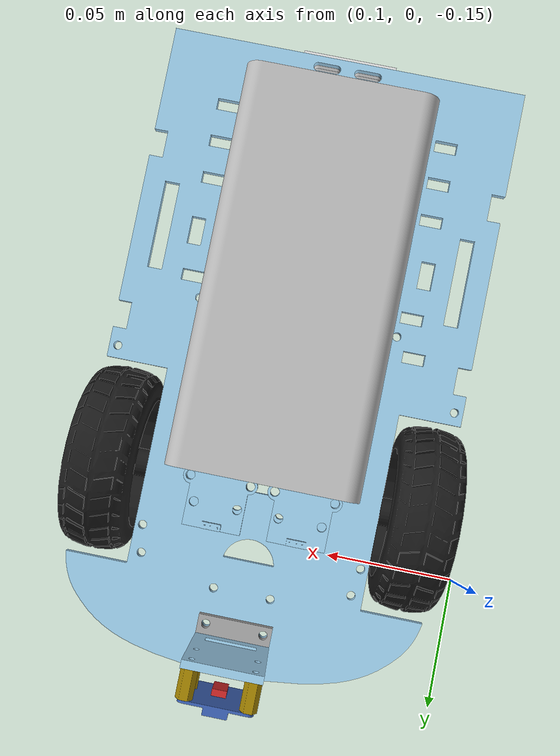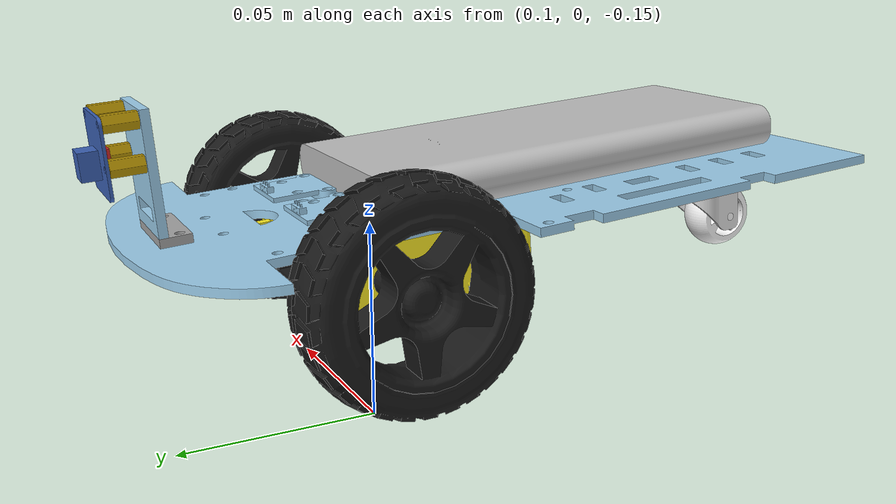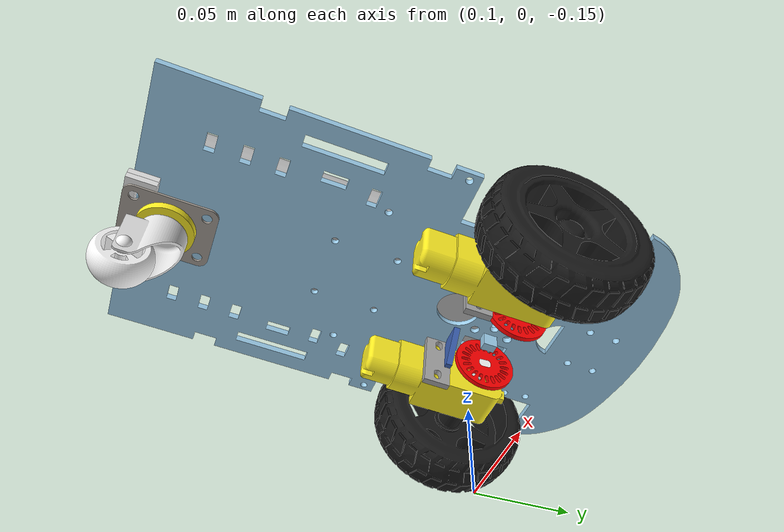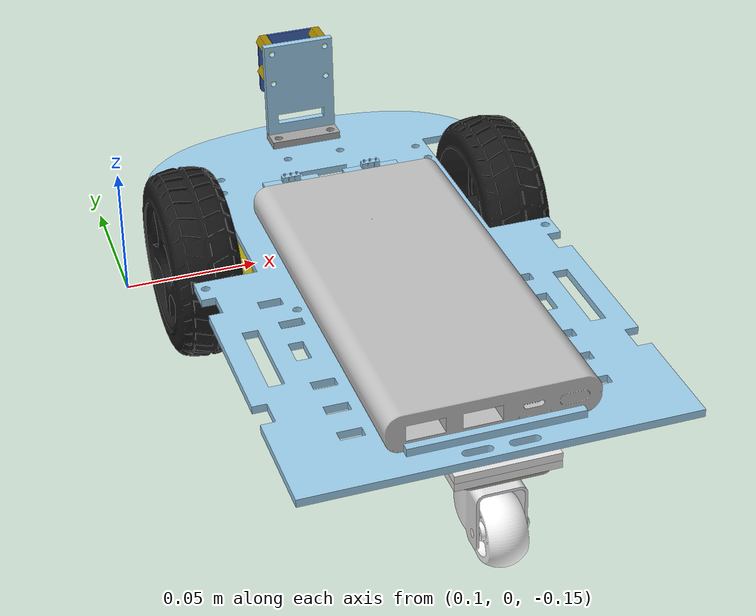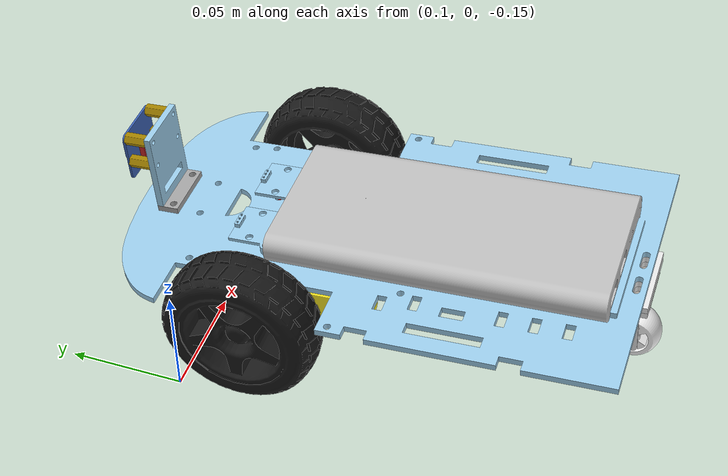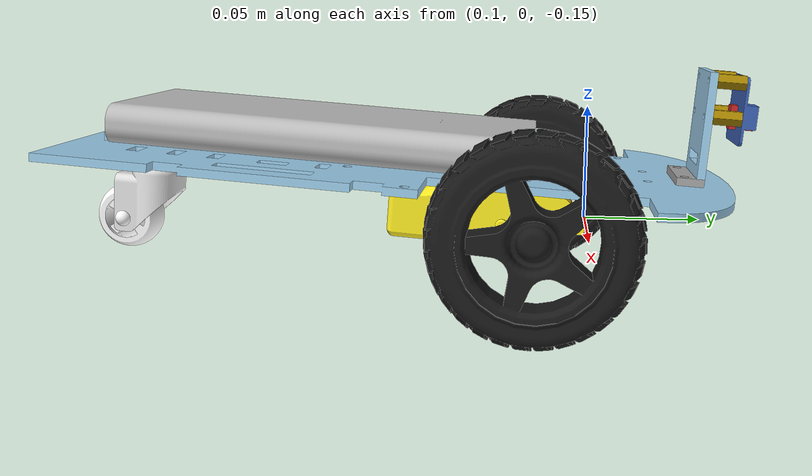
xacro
<?xml version='1.0'?>

<robot name="edubot_2wd" xmlns:xacro="http://www.ros.org/wiki/xacro">
    <xacro:include filename="$(find edubot_2wd)/urdf/edubot_2wd.gazebo"/>

<link name="base_assembly_1">
<inertial>
<origin xyz="0 0 0" rpy="0 0 0" />
<mass value="1e-9" />
<inertia ixx="0" ixy="0" ixz="0" iyy="0" iyz="0" izz="0" />
</inertial>
</link>
<link name="base_assembly_1_0_motor_support">
<visual>
<geometry>
<mesh filename="package://edubot_2wd/urdf/motor_support.stl"/>
</geometry>
<material name="base_assembly_1_0_motor_support_material">
<color rgba="0.647059 0.647059 0.647059 1.0"/>
</material>
</visual>
<collision>
<geometry>
<mesh filename="package://edubot_2wd/urdf/motor_support.stl"/>
</geometry>
<material name="base_assembly_1_0_motor_support_material">
<color rgba="0.647059 0.647059 0.647059 1.0"/>
</material>
</collision>
<inertial>
<origin xyz="0.120581 0.020618 0.0014" rpy="0 0 0"/>
<mass value="0.000867038"/>
<inertia ixx="1.00991e-08" ixy="9.39237e-10"  ixz="0" iyy="5.75721e-08" iyz="0" izz="6.65383e-08" />
</inertial>
</link>
<joint name="base_assembly_1_base_assembly_1_0_motor_support_fixing" type="fixed">
<origin xyz="0.158781 -0.0710889 -0.24573" rpy="-1.57079 -1.49607 1.57079" />
<parent link="base_assembly_1" />
<child link="base_assembly_1_0_motor_support" />
<axis xyz="0 0 0"/>
</joint>

<link name="base_assembly_1_1_motor_support_fix">
<visual>
<geometry>
<mesh filename="package://edubot_2wd/urdf/motor_support_fix.stl"/>
</geometry>
<material name="base_assembly_1_1_motor_support_fix_material">
<color rgba="0.231373 0.380392 0.705882 1.0"/>
</material>
</visual>
<collision>
<geometry>
<mesh filename="package://edubot_2wd/urdf/motor_support_fix.stl"/>
</geometry>
<material name="base_assembly_1_1_motor_support_fix_material">
<color rgba="0.231373 0.380392 0.705882 1.0"/>
</material>
</collision>
<inertial>
<origin xyz="0.114114 0.0643843 0.0014" rpy="0 0 0"/>
<mass value="0.000375957"/>
<inertia ixx="5.697e-09" ixy="2.13221e-09"  ixz="0" iyy="3.64143e-09" iyz="0" izz="8.84718e-09" />
</inertial>
</link>
<joint name="base_assembly_1_base_assembly_1_1_motor_support_fix_fixing" type="fixed">
<origin xyz="0.27572 -0.042665 -0.186442" rpy="1.64553 -1.29436e-07 3.14159" />
<parent link="base_assembly_1" />
<child link="base_assembly_1_1_motor_support_fix" />
<axis xyz="0 0 0"/>
</joint>

<link name="base_assembly_1_2_camera_chassis">
<visual>
<geometry>
<mesh filename="package://edubot_2wd/urdf/camera_chassis.stl"/>
</geometry>
<material name="base_assembly_1_2_camera_chassis_material">
<color rgba="0.615686 0.811765 0.929412 1.0"/>
</material>
</visual>
<collision>
<geometry>
<mesh filename="package://edubot_2wd/urdf/camera_chassis.stl"/>
</geometry>
<material name="base_assembly_1_2_camera_chassis_material">
<color rgba="0.615686 0.811765 0.929412 1.0"/>
</material>
</collision>
<inertial>
<origin xyz="5.87229e-19 -0.0014 0.030354" rpy="0 0 0"/>
<mass value="0.002993"/>
<inertia ixx="3.36266e-07" ixy="0"  ixz="0" iyy="5.21243e-07" iyz="0" izz="1.88888e-07" />
</inertial>
</link>
<joint name="base_assembly_1_base_assembly_1_2_camera_chassis_fixing" type="fixed">
<origin xyz="0.179606 0.0362425 -0.126733" rpy="-0.0747306 1.29436e-07 -9.69083e-09" />
<parent link="base_assembly_1" />
<child link="base_assembly_1_2_camera_chassis" />
<axis xyz="0 0 0"/>
</joint>

<link name="base_assembly_1_3_htsb-m3-10-5-1">
<visual>
<geometry>
<mesh filename="package://edubot_2wd/urdf/htsb-m3-10-5-1.stl"/>
</geometry>
<material name="base_assembly_1_3_htsb-m3-10-5-1_material">
<color rgba="0.647059 0.517647 0 1.0"/>
</material>
</visual>
<collision>
<geometry>
<mesh filename="package://edubot_2wd/urdf/htsb-m3-10-5-1.stl"/>
</geometry>
<material name="base_assembly_1_3_htsb-m3-10-5-1_material">
<color rgba="0.647059 0.517647 0 1.0"/>
</material>
</collision>
<inertial>
<origin xyz="-2.65892e-16 6.66116e-10 0.005" rpy="0 0 0"/>
<mass value="0.00129095"/>
<inertia ixx="1.34386e-08" ixy="0"  ixz="0" iyy="1.34386e-08" iyz="-3.44676e-15" izz="5.50858e-09" />
</inertial>
</link>
<joint name="base_assembly_1_base_assembly_1_3_htsb-m3-10-5-1_fixing" type="fixed">
<origin xyz="0.169106 0.0486553 -0.094881" rpy="1.49607 1.29436e-07 -9.69083e-09" />
<parent link="base_assembly_1" />
<child link="base_assembly_1_3_htsb-m3-10-5-1" />
<axis xyz="0 0 0"/>
</joint>

<link name="base_assembly_1_4_spacer">
<visual>
<geometry>
<mesh filename="package://edubot_2wd/urdf/spacer.stl"/>
</geometry>
<material name="base_assembly_1_4_spacer_material">
<color rgba="0.917647 0.917647 0.917647 1.0"/>
</material>
</visual>
<collision>
<geometry>
<mesh filename="package://edubot_2wd/urdf/spacer.stl"/>
</geometry>
<material name="base_assembly_1_4_spacer_material">
<color rgba="0.917647 0.917647 0.917647 1.0"/>
</material>
</collision>
<inertial>
<origin xyz="0.128001 -0.00982753 0.0014" rpy="0 0 0"/>
<mass value="0.00121635"/>
<inertia ixx="1.86821e-08" ixy="0"  ixz="0" iyy="1.32941e-07" iyz="0" izz="1.50034e-07" />
</inertial>
</link>
<joint name="base_assembly_1_base_assembly_1_4_spacer_fixing" type="fixed">
<origin xyz="0.0516034 -0.168639 -0.111671" rpy="-0.0747306 1.29436e-07 -9.69083e-09" />
<parent link="base_assembly_1" />
<child link="base_assembly_1_4_spacer" />
<axis xyz="0 0 0"/>
</joint>

<link name="base_assembly_1_5_encoder">
<visual>
<geometry>
<mesh filename="package://edubot_2wd/urdf/encoder.stl"/>
</geometry>
<material name="base_assembly_1_5_encoder_material">
<color rgba="0.615686 0.811765 0.929412 1.0"/>
</material>
</visual>
<collision>
<geometry>
<mesh filename="package://edubot_2wd/urdf/encoder.stl"/>
</geometry>
<material name="base_assembly_1_5_encoder_material">
<color rgba="0.615686 0.811765 0.929412 1.0"/>
</material>
</collision>
<inertial>
<origin xyz="0.0168709 7.9004e-08 0.00178212" rpy="0 0 0"/>
<mass value="0.00147569"/>
<inertia ixx="7.31045e-08" ixy="1.4847e-12"  ixz="-1.54112e-08" iyy="7.29552e-08" iyz="5.02921e-13" izz="1.08571e-07" />
</inertial>
</link>
<joint name="base_assembly_1_base_assembly_1_5_encoder_fixing" type="fixed">
<origin xyz="0.16404 1.74183e-05 -0.11387" rpy="3.14159 -0.0747306 -1.5708" />
<parent link="base_assembly_1" />
<child link="base_assembly_1_5_encoder" />
<axis xyz="0 0 0"/>
</joint>

<link name="base_assembly_1_6_htsb-m3-10-5-1">
<visual>
<geometry>
<mesh filename="package://edubot_2wd/urdf/htsb-m3-10-5-1.stl"/>
</geometry>
<material name="base_assembly_1_6_htsb-m3-10-5-1_material">
<color rgba="0.647059 0.517647 0 1.0"/>
</material>
</visual>
<collision>
<geometry>
<mesh filename="package://edubot_2wd/urdf/htsb-m3-10-5-1.stl"/>
</geometry>
<material name="base_assembly_1_6_htsb-m3-10-5-1_material">
<color rgba="0.647059 0.517647 0 1.0"/>
</material>
</collision>
<inertial>
<origin xyz="-2.65892e-16 6.66116e-10 0.005" rpy="0 0 0"/>
<mass value="0.00129095"/>
<inertia ixx="1.34386e-08" ixy="0"  ixz="0" iyy="1.34386e-08" iyz="-3.44676e-15" izz="5.50858e-09" />
</inertial>
</link>
<joint name="base_assembly_1_base_assembly_1_6_htsb-m3-10-5-1_fixing" type="fixed">
<origin xyz="0.169106 0.0495886 -0.0824159" rpy="1.49607 1.29436e-07 -9.69083e-09" />
<parent link="base_assembly_1" />
<child link="base_assembly_1_6_htsb-m3-10-5-1" />
<axis xyz="0 0 0"/>
</joint>

<link name="base_assembly_1_7_base_chassis">
<visual>
<geometry>
<mesh filename="package://edubot_2wd/urdf/base_chassis.stl"/>
</geometry>
<material name="base_assembly_1_7_base_chassis_material">
<color rgba="0.615686 0.811765 0.929412 1.0"/>
</material>
</visual>
<collision>
<geometry>
<mesh filename="package://edubot_2wd/urdf/base_chassis.stl"/>
</geometry>
<material name="base_assembly_1_7_base_chassis_material">
<color rgba="0.615686 0.811765 0.929412 1.0"/>
</material>
</collision>
<inertial>
<origin xyz="6.67892e-05 -0.0115804 0.00141898" rpy="0 0 0"/>
<mass value="0.0793419"/>
<inertia ixx="0.000355218" ixy="3.16188e-08"  ixz="-7.7479e-10" iyy="9.42324e-05" iyz="1.4262e-07" izz="0.000449339" />
</inertial>
</link>
<joint name="base_assembly_1_base_assembly_1_7_base_chassis_fixing" type="fixed">
<origin xyz="0.179604 -0.0662991 -0.113718" rpy="-0.0747306 1.29436e-07 -9.69083e-09" />
<parent link="base_assembly_1" />
<child link="base_assembly_1_7_base_chassis" />
<axis xyz="0 0 0"/>
</joint>
// for edubot_2wd
<link name="base_assembly_1_8_camera">
<visual>
<geometry>
<mesh filename="package://edubot_2wd/urdf/camera.stl"/>
</geometry>
<material name="base_assembly_1_8_camera_material">
<color rgba="0.231373 0.380392 0.705882 1.0"/>
</material>
</visual>
<collision>
<geometry>
<mesh filename="package://edubot_2wd/urdf/camera.stl"/>
</geometry>
<material name="base_assembly_1_8_camera_material">
<color rgba="0.231373 0.380392 0.705882 1.0"/>
</material>
</collision>
<inertial>
<origin xyz="0.039471 -0.000916067 0.043527" rpy="0 0 0"/>
<mass value="0.00104599"/>
<inertia ixx="3.6693e-08" ixy="0"  ixz="0" iyy="6.55484e-08" iyz="-2.04222e-09" izz="3.72038e-08" />
</inertial>
</link>
<joint name="base_assembly_1_base_assembly_1_8_camera_fixing" type="fixed">
<origin xyz="0.219077 0.0465131 -0.136887" rpy="0.0747306 -1.29436e-07 3.14159" />
<parent link="base_assembly_1" />
<child link="base_assembly_1_8_camera" />
<axis xyz="0 0 0"/>
</joint>

<!-- Camera Interface -->
<link name="camera">
    <inertial>
        <mass value="0.1"/>
        <origin xyz="0.0 0 0" rpy=" 0 0 0"/>
        <inertia
            ixx="1e-6" ixy="0" ixz="0"
            iyy="1e-6" iyz="0"
            izz="1e-6"
        />
    </inertial>

    <collision name="camera_collision">
        <origin xyz="0.0 0 0" rpy=" 0 0 0"/>
        <geometry>
            <box size="0.0085 0.0025 0.0085"/>
        </geometry>
    </collision>

    <visual name="camera_visual">
        <origin xyz="0.0 0 0" rpy=" 0 0 0"/>
        <geometry>
            <box size="0.0085 0.0050 0.0085"/>
        </geometry>
    </visual>
</link>

<joint name="camera_joint" type="fixed">
    <origin xyz="0.039471 -0.000916067 0.04176" rpy="0 0 -1.57"/>
    <child link="camera"/>
    <parent link="base_assembly_1_8_camera"/>
    <axis xyz="0 1 0" rpy="0 0 0"/>
</joint>

<link name="base_assembly_1_9_bomotor">
<visual>
<geometry>
<mesh filename="package://edubot_2wd/urdf/bomotor.stl"/>
</geometry>
<material name="base_assembly_1_9_bomotor_material">
<color rgba="1 0.937255 0.137255 1.0"/>
</material>
</visual>
<collision>
<geometry>
<mesh filename="package://edubot_2wd/urdf/bomotor.stl"/>
</geometry>
<material name="base_assembly_1_9_bomotor_material">
<color rgba="1 0.937255 0.137255 1.0"/>
</material>
</collision>
<inertial>
<origin xyz="-0.000220082 -0.0279981 7.35227e-11" rpy="0 0 0"/>
<mass value="0.0223517"/>
<inertia ixx="7.11163e-06" ixy="-1.03276e-07"  ixz="2.81331e-13" iyy="1.39901e-06" iyz="6.1673e-14" izz="6.87826e-06" />
</inertial>
</link>
<joint name="base_assembly_1_base_assembly_1_9_bomotor_fixing" type="fixed">
<origin xyz="0.146631 -0.00983296 -0.128976" rpy="-3.06686 -1.29436e-07 3.14159" />
<parent link="base_assembly_1" />
<child link="base_assembly_1_9_bomotor" />
<axis xyz="0 0 0"/>
</joint>

<link name="base_assembly_1_10_part4assem2">
<visual>
<geometry>
<mesh filename="package://edubot_2wd/urdf/part4assem2.stl"/>
</geometry>
<material name="base_assembly_1_10_part4assem2_material">
<color rgba="1 0.937255 0.137255 1.0"/>
</material>
</visual>
<collision>
<geometry>
<mesh filename="package://edubot_2wd/urdf/part4assem2.stl"/>
</geometry>
<material name="base_assembly_1_10_part4assem2_material">
<color rgba="1 0.937255 0.137255 1.0"/>
</material>
</collision>
<inertial>
<origin xyz="-0.0428083 -0.0015 -0.0128044" rpy="0 0 0"/>
<mass value="0.00984795"/>
<inertia ixx="3.8407e-07" ixy="0"  ixz="0" iyy="7.53368e-07" iyz="0" izz="3.8407e-07" />
</inertial>
</link>
<joint name="base_assembly_1_base_assembly_1_10_part4assem2_fixing" type="fixed">
<origin xyz="0.136796 -0.178678 -0.114931" rpy="-1.49607 -1.29436e-07 3.14159" />
<parent link="base_assembly_1" />
<child link="base_assembly_1_10_part4assem2" />
<axis xyz="0 0 0"/>
</joint>

<link name="base_assembly_1_11_camera_support">
<visual>
<geometry>
<mesh filename="package://edubot_2wd/urdf/camera_support.stl"/>
</geometry>
<material name="base_assembly_1_11_camera_support_material">
<color rgba="0.647059 0.647059 0.647059 1.0"/>
</material>
</visual>
<collision>
<geometry>
<mesh filename="package://edubot_2wd/urdf/camera_support.stl"/>
</geometry>
<material name="base_assembly_1_11_camera_support_material">
<color rgba="0.647059 0.647059 0.647059 1.0"/>
</material>
</collision>
<inertial>
<origin xyz="0.0377144 -0.0014 0.0159868" rpy="0 0 0"/>
<mass value="0.000793831"/>
<inertia ixx="6.82045e-09" ixy="0"  ixz="0" iyy="5.19726e-08" iyz="0" izz="4.61894e-08" />
</inertial>
</link>
<joint name="base_assembly_1_base_assembly_1_11_camera_support_fixing" type="fixed">
<origin xyz="0.141892 0.0162274 -0.117089" rpy="-1.64553 1.29436e-07 -9.69083e-09" />
<parent link="base_assembly_1" />
<child link="base_assembly_1_11_camera_support" />
<axis xyz="0 0 0"/>
</joint>

<link name="base_assembly_1_12_spacer">
<visual>
<geometry>
<mesh filename="package://edubot_2wd/urdf/spacer.stl"/>
</geometry>
<material name="base_assembly_1_12_spacer_material">
<color rgba="0.917647 0.917647 0.917647 1.0"/>
</material>
</visual>
<collision>
<geometry>
<mesh filename="package://edubot_2wd/urdf/spacer.stl"/>
</geometry>
<material name="base_assembly_1_12_spacer_material">
<color rgba="0.917647 0.917647 0.917647 1.0"/>
</material>
</collision>
<inertial>
<origin xyz="0.128001 -0.00982753 0.0014" rpy="0 0 0"/>
<mass value="0.00121635"/>
<inertia ixx="1.86821e-08" ixy="0"  ixz="0" iyy="1.32941e-07" iyz="0" izz="1.50034e-07" />
</inertial>
</link>
<joint name="base_assembly_1_base_assembly_1_12_spacer_fixing" type="fixed">
<origin xyz="0.0516034 -0.16843 -0.108879" rpy="-0.0747306 1.29436e-07 -9.69083e-09" />
<parent link="base_assembly_1" />
<child link="base_assembly_1_12_spacer" />
<axis xyz="0 0 0"/>
</joint>

<link name="base_assembly_1_13_htsb-m3-10-5-1">
<visual>
<geometry>
<mesh filename="package://edubot_2wd/urdf/htsb-m3-10-5-1.stl"/>
</geometry>
<material name="base_assembly_1_13_htsb-m3-10-5-1_material">
<color rgba="0.647059 0.517647 0 1.0"/>
</material>
</visual>
<collision>
<geometry>
<mesh filename="package://edubot_2wd/urdf/htsb-m3-10-5-1.stl"/>
</geometry>
<material name="base_assembly_1_13_htsb-m3-10-5-1_material">
<color rgba="0.647059 0.517647 0 1.0"/>
</material>
</collision>
<inertial>
<origin xyz="-2.65892e-16 6.66116e-10 0.005" rpy="0 0 0"/>
<mass value="0.00129095"/>
<inertia ixx="1.34386e-08" ixy="0"  ixz="0" iyy="1.34386e-08" iyz="-3.44676e-15" izz="5.50858e-09" />
</inertial>
</link>
<joint name="base_assembly_1_base_assembly_1_13_htsb-m3-10-5-1_fixing" type="fixed">
<origin xyz="0.190106 0.0486553 -0.094881" rpy="1.49607 1.29436e-07 -9.69083e-09" />
<parent link="base_assembly_1" />
<child link="base_assembly_1_13_htsb-m3-10-5-1" />
<axis xyz="0 0 0"/>
</joint>

<link name="base_assembly_1_14_htsb-m3-10-5-1">
<visual>
<geometry>
<mesh filename="package://edubot_2wd/urdf/htsb-m3-10-5-1.stl"/>
</geometry>
<material name="base_assembly_1_14_htsb-m3-10-5-1_material">
<color rgba="0.647059 0.517647 0 1.0"/>
</material>
</visual>
<collision>
<geometry>
<mesh filename="package://edubot_2wd/urdf/htsb-m3-10-5-1.stl"/>
</geometry>
<material name="base_assembly_1_14_htsb-m3-10-5-1_material">
<color rgba="0.647059 0.517647 0 1.0"/>
</material>
</collision>
<inertial>
<origin xyz="-2.65892e-16 6.66116e-10 0.005" rpy="0 0 0"/>
<mass value="0.00129095"/>
<inertia ixx="1.34386e-08" ixy="0"  ixz="0" iyy="1.34386e-08" iyz="-3.44676e-15" izz="5.50858e-09" />
</inertial>
</link>
<joint name="base_assembly_1_base_assembly_1_14_htsb-m3-10-5-1_fixing" type="fixed">
<origin xyz="0.190106 0.0495886 -0.0824159" rpy="1.49607 1.29436e-07 -9.69083e-09" />
<parent link="base_assembly_1" />
<child link="base_assembly_1_14_htsb-m3-10-5-1" />
<axis xyz="0 0 0"/>
</joint>

<link name="base_assembly_1_15_motor_support">
<visual>
<geometry>
<mesh filename="package://edubot_2wd/urdf/motor_support.stl"/>
</geometry>
<material name="base_assembly_1_15_motor_support_material">
<color rgba="0.647059 0.647059 0.647059 1.0"/>
</material>
</visual>
<collision>
<geometry>
<mesh filename="package://edubot_2wd/urdf/motor_support.stl"/>
</geometry>
<material name="base_assembly_1_15_motor_support_material">
<color rgba="0.647059 0.647059 0.647059 1.0"/>
</material>
</collision>
<inertial>
<origin xyz="0.120581 0.020618 0.0014" rpy="0 0 0"/>
<mass value="0.000867038"/>
<inertia ixx="1.00991e-08" ixy="9.39237e-10"  ixz="0" iyy="5.75721e-08" iyz="0" izz="6.65383e-08" />
</inertial>
</link>
<joint name="base_assembly_1_base_assembly_1_15_motor_support_fixing" type="fixed">
<origin xyz="0.203228 -0.0710889 -0.24573" rpy="-1.57079 -1.49607 1.57079" />
<parent link="base_assembly_1" />
<child link="base_assembly_1_15_motor_support" />
<axis xyz="0 0 0"/>
</joint>

<link name="base_assembly_1_16_motor_support_fix">
<visual>
<geometry>
<mesh filename="package://edubot_2wd/urdf/motor_support_fix.stl"/>
</geometry>
<material name="base_assembly_1_16_motor_support_fix_material">
<color rgba="0.231373 0.380392 0.705882 1.0"/>
</material>
</visual>
<collision>
<geometry>
<mesh filename="package://edubot_2wd/urdf/motor_support_fix.stl"/>
</geometry>
<material name="base_assembly_1_16_motor_support_fix_material">
<color rgba="0.231373 0.380392 0.705882 1.0"/>
</material>
</collision>
<inertial>
<origin xyz="0.114114 0.0643843 0.0014" rpy="0 0 0"/>
<mass value="0.000375957"/>
<inertia ixx="5.697e-09" ixy="2.13221e-09"  ixz="0" iyy="3.64143e-09" iyz="0" izz="8.84718e-09" />
</inertial>
</link>
<joint name="base_assembly_1_base_assembly_1_16_motor_support_fix_fixing" type="fixed">
<origin xyz="0.0834887 -0.0398728 -0.186651" rpy="1.49607 1.29436e-07 -9.69083e-09" />
<parent link="base_assembly_1" />
<child link="base_assembly_1_16_motor_support_fix" />
<axis xyz="0 0 0"/>
</joint>

<link name="base_assembly_1_17_01_base_plate">
<visual>
<geometry>
<mesh filename="package://edubot_2wd/urdf/01_base_plate.stl"/>
</geometry>
<material name="base_assembly_1_17_01_base_plate_material">
<color rgba="0.647059 0.619608 0.588235 1.0"/>
</material>
</visual>
<collision>
<geometry>
<mesh filename="package://edubot_2wd/urdf/01_base_plate.stl"/>
</geometry>
<material name="base_assembly_1_17_01_base_plate_material">
<color rgba="0.647059 0.619608 0.588235 1.0"/>
</material>
</collision>
<inertial>
<origin xyz="-1.05806e-18 3.0561e-19 -0.0005" rpy="0 0 0"/>
<mass value="0.00810156"/>
<inertia ixx="9.43775e-07" ixy="0"  ixz="0" iyy="5.98899e-07" iyz="0" izz="1.54132e-06" />
</inertial>
</link>
<joint name="base_assembly_1_base_assembly_1_17_01_base_plate_fixing" type="fixed">
<origin xyz="0.179604 -0.165611 -0.111898" rpy="-0.0747306 1.29436e-07 -9.69083e-09" />
<parent link="base_assembly_1" />
<child link="base_assembly_1_17_01_base_plate" />
<axis xyz="0 0 0"/>
</joint>

<link name="base_assembly_1_18_bomotor">
<visual>
<geometry>
<mesh filename="package://edubot_2wd/urdf/bomotor.stl"/>
</geometry>
<material name="base_assembly_1_18_bomotor_material">
<color rgba="1 0.937255 0.137255 1.0"/>
</material>
</visual>
<collision>
<geometry>
<mesh filename="package://edubot_2wd/urdf/bomotor.stl"/>
</geometry>
<material name="base_assembly_1_18_bomotor_material">
<color rgba="1 0.937255 0.137255 1.0"/>
</material>
</collision>
<inertial>
<origin xyz="-0.000220082 -0.0279981 7.35227e-11" rpy="0 0 0"/>
<mass value="0.0223517"/>
<inertia ixx="7.11163e-06" ixy="-1.03276e-07"  ixz="2.81331e-13" iyy="1.39901e-06" iyz="6.1673e-14" izz="6.87826e-06" />
</inertial>
</link>
<joint name="base_assembly_1_base_assembly_1_18_bomotor_fixing" type="fixed">
<origin xyz="0.212578 -0.00983296 -0.128976" rpy="-0.0747306 1.29436e-07 -9.69083e-09" />
<parent link="base_assembly_1" />
<child link="base_assembly_1_18_bomotor" />
<axis xyz="0 0 0"/>
</joint>

<link name="base_assembly_1_19_encoder">
<visual>
<geometry>
<mesh filename="package://edubot_2wd/urdf/encoder.stl"/>
</geometry>
<material name="base_assembly_1_19_encoder_material">
<color rgba="0.615686 0.811765 0.929412 1.0"/>
</material>
</visual>
<collision>
<geometry>
<mesh filename="package://edubot_2wd/urdf/encoder.stl"/>
</geometry>
<material name="base_assembly_1_19_encoder_material">
<color rgba="0.615686 0.811765 0.929412 1.0"/>
</material>
</collision>
<inertial>
<origin xyz="0.0168709 7.9004e-08 0.00178212" rpy="0 0 0"/>
<mass value="0.00147569"/>
<inertia ixx="7.31045e-08" ixy="1.4847e-12"  ixz="-1.54112e-08" iyy="7.29552e-08" iyz="5.02921e-13" izz="1.08571e-07" />
</inertial>
</link>
<joint name="base_assembly_1_base_assembly_1_19_encoder_fixing" type="fixed">
<origin xyz="0.195168 1.7418e-05 -0.11387" rpy="3.14159 -0.0747306 -1.5708" />
<parent link="base_assembly_1" />
<child link="base_assembly_1_19_encoder" />
<axis xyz="0 0 0"/>
</joint>

<link name="base_assembly_1_20_mipowerbankbody">
<visual>
<geometry>
<mesh filename="package://edubot_2wd/urdf/mipowerbankbody.stl"/>
</geometry>
<material name="base_assembly_1_20_mipowerbankbody_material">
<color rgba="0.752941 0.752941 0.752941 1.0"/>
</material>
</visual>
<collision>
<geometry>
<mesh filename="package://edubot_2wd/urdf/mipowerbankbody.stl"/>
</geometry>
<material name="base_assembly_1_20_mipowerbankbody_material">
<color rgba="0.752941 0.752941 0.752941 1.0"/>
</material>
</collision>
<inertial>
<origin xyz="0.000147357 -4.61541e-07 -0.00690116" rpy="0 0 0"/>
<mass value="0.379828"/>
<inertia ixx="0.000684854" ixy="2.31547e-09"  ixz="-3.85005e-06" iyy="0.000829888" iyz="1.31742e-08" izz="0.000157161" />
</inertial>
</link>
<joint name="base_assembly_1_base_assembly_1_20_mipowerbankbody_fixing" type="fixed">
<origin xyz="0.180187 -0.102362 -0.101692" rpy="1.49607 1.29436e-07 -9.69083e-09" />
<parent link="base_assembly_1" />
<child link="base_assembly_1_20_mipowerbankbody" />
<axis xyz="0 0 0"/>
</joint>

<link name="wheel-encoder_assembly_1">
<inertial>
<origin xyz="0 0 0" rpy="0 0 0" />
<mass value="1e-9" />
<inertia ixx="0" ixy="0" ixz="0" iyy="0" iyz="0" izz="0" />
</inertial>
</link>
<link name="wheel-encoder_assembly_1_0_encwheel">
<visual>
<geometry>
<mesh filename="package://edubot_2wd/urdf/encwheel.stl"/>
</geometry>
<material name="wheel-encoder_assembly_1_0_encwheel_material">
<color rgba="1 0 0 1.0"/>
</material>
</visual>
<collision>
<geometry>
<mesh filename="package://edubot_2wd/urdf/encwheel.stl"/>
</geometry>
<material name="wheel-encoder_assembly_1_0_encwheel_material">
<color rgba="1 0 0 1.0"/>
</material>
</collision>
<inertial>
<origin xyz="-8.9546e-19 -0.001 1.73363e-18" rpy="0 0 0"/>
<mass value="0.000904879"/>
<inertia ixx="4.28296e-08" ixy="0"  ixz="0" iyy="8.50959e-08" iyz="0" izz="4.28695e-08" />
</inertial>
</link>
<joint name="wheel-encoder_assembly_1_wheel-encoder_assembly_1_0_encwheel_fixing" type="fixed">
<origin xyz="0.0157 6.93889e-18 0" rpy="-1.5708 1.5708 0" />
<parent link="wheel-encoder_assembly_1" />
<child link="wheel-encoder_assembly_1_0_encwheel" />
<axis xyz="0 0 0"/>
</joint>

<link name="wheel-encoder_assembly_1_1_bowheel">
<visual>
<geometry>
<mesh filename="package://edubot_2wd/urdf/bowheel.stl"/>
</geometry>
<material name="wheel-encoder_assembly_1_1_bowheel_material">
<color rgba="0.101961 0.101961 0.101961 1.0"/>
</material>
</visual>
<collision>
<geometry>
<mesh filename="package://edubot_2wd/urdf/bowheel.stl"/>
</geometry>
<material name="wheel-encoder_assembly_1_1_bowheel_material">
<color rgba="0.101961 0.101961 0.101961 1.0"/>
</material>
</collision>
<inertial>
<origin xyz="-0.00113129 1.93084e-17 -1.7794e-17" rpy="0 0 0"/>
<mass value="0.076202"/>
<inertia ixx="5.46071e-05" ixy="0"  ixz="0" iyy="3.04745e-05" iyz="0" izz="3.04738e-05" />
</inertial>
</link>
<joint name="wheel-encoder_assembly_1_wheel-encoder_assembly_1_1_bowheel_fixing" type="fixed">
<origin xyz="-0.02535 0 2.77556e-17" rpy="0 1.83697e-16 -6.61744e-24" />
<parent link="wheel-encoder_assembly_1" />
<child link="wheel-encoder_assembly_1_1_bowheel" />
<axis xyz="0 0 0"/>
</joint>

<link name="wheel-encoder_assembly_1_2_bomoshaft">
<visual>
<geometry>
<mesh filename="package://edubot_2wd/urdf/bomoshaft.stl"/>
</geometry>
<material name="wheel-encoder_assembly_1_2_bomoshaft_material">
<color rgba="1 1 1 1.0"/>
</material>
</visual>
<collision>
<geometry>
<mesh filename="package://edubot_2wd/urdf/bomoshaft.stl"/>
</geometry>
<material name="wheel-encoder_assembly_1_2_bomoshaft_material">
<color rgba="1 1 1 1.0"/>
</material>
</collision>
<inertial>
<origin xyz="0.0178038 -4.19817e-21 8.39633e-21" rpy="0 0 0"/>
<mass value="0.000809686"/>
<inertia ixx="2.89511e-09" ixy="0"  ixz="0" iyy="7.95812e-08" iyz="0" izz="7.99142e-08" />
</inertial>
</link>
<joint name="wheel-encoder_assembly_1_wheel-encoder_assembly_1_2_bomoshaft_fixing" type="fixed">
<origin xyz="-0.0177 6.93889e-18 0" rpy="0 -0 -6.61744e-24" />
<parent link="wheel-encoder_assembly_1" />
<child link="wheel-encoder_assembly_1_2_bomoshaft" />
<axis xyz="0 0 0"/>
</joint>

<joint name="right_motor" type="continuous">
<origin xyz="0.212578 -0.0214006 -0.12811" rpy="2.82985 -1.29436e-07 3.14159" />
<parent link="base_assembly_1" />
<child link="wheel-encoder_assembly_1" />
<axis xyz="1 0 0"/>
<limit effort="1.5" velocity="22" />
<joint_properties damping="0.7" friction="100"/>
</joint>

<link name="castorswivelasm_1">
<inertial>
<origin xyz="0 0 0" rpy="0 0 0" />
<mass value="1e-9" />
<inertia ixx="0" ixy="0" ixz="0" iyy="0" iyz="0" izz="0" />
</inertial>
</link>
<link name="castorswivelasm_1_0_part3assem2">
<visual>
<geometry>
<mesh filename="package://edubot_2wd/urdf/part3assem2.stl"/>
</geometry>
<material name="castorswivelasm_1_0_part3assem2_material">
<color rgba="0.898039 0.898039 0.898039 1.0"/>
</material>
</visual>
<collision>
<geometry>
<mesh filename="package://edubot_2wd/urdf/part3assem2.stl"/>
</geometry>
<material name="castorswivelasm_1_0_part3assem2_material">
<color rgba="0.898039 0.898039 0.898039 1.0"/>
</material>
</collision>
<inertial>
<origin xyz="-0.0253501 0.00290364 0.0293492" rpy="0 0 0"/>
<mass value="0.0101735"/>
<inertia ixx="9.61547e-07" ixy="2.46602e-11"  ixz="-1.29837e-11" iyy="1.0022e-06" iyz="1.70297e-07" izz="1.00848e-06" />
</inertial>
</link>
<joint name="castorswivelasm_1_castorswivelasm_1_0_part3assem2_fixing" type="fixed">
<origin xyz="0.02535 5.55112e-17 -0.0379251" rpy="0 -0 -4.96308e-24" />
<parent link="castorswivelasm_1" />
<child link="castorswivelasm_1_0_part3assem2" />
<axis xyz="0 0 0"/>
</joint>

<link name="castorswivelasm_1_1_part2assem2">
<visual>
<geometry>
<mesh filename="package://edubot_2wd/urdf/part2assem2.stl"/>
</geometry>
<material name="castorswivelasm_1_1_part2assem2_material">
<color rgba="1 1 1 1.0"/>
</material>
</visual>
<collision>
<geometry>
<mesh filename="package://edubot_2wd/urdf/part2assem2.stl"/>
</geometry>
<material name="castorswivelasm_1_1_part2assem2_material">
<color rgba="1 1 1 1.0"/>
</material>
</collision>
<inertial>
<origin xyz="-0.0253256 1.53306e-19 0.013106" rpy="0 0 0"/>
<mass value="0.0014221"/>
<inertia ixx="8.08232e-09" ixy="0"  ixz="0" iyy="8.08232e-09" iyz="0" izz="7.1514e-09" />
</inertial>
</link>
<joint name="castorswivelasm_1_castorswivelasm_1_1_part2assem2_fixing" type="fixed">
<origin xyz="-0.0253256 1.11022e-16 -0.0122554" rpy="0 -0 3.14159" />
<parent link="castorswivelasm_1" />
<child link="castorswivelasm_1_1_part2assem2" />
<axis xyz="0 0 0"/>
</joint>

<link name="castorswivelasm_1_2_part7assem2">
<visual>
<geometry>
<mesh filename="package://edubot_2wd/urdf/part7assem2.stl"/>
</geometry>
<material name="castorswivelasm_1_2_part7assem2_material">
<color rgba="1 1 1 1.0"/>
</material>
</visual>
<collision>
<geometry>
<mesh filename="package://edubot_2wd/urdf/part7assem2.stl"/>
</geometry>
<material name="castorswivelasm_1_2_part7assem2_material">
<color rgba="1 1 1 1.0"/>
</material>
</collision>
<inertial>
<origin xyz="-0.113618 6.39574e-20 -0.0308185" rpy="0 0 0"/>
<mass value="0.00118135"/>
<inertia ixx="1.86174e-09" ixy="0"  ixz="0" iyy="4.01676e-08" iyz="0" izz="4.01676e-08" />
</inertial>
</link>
<joint name="castorswivelasm_1_castorswivelasm_1_2_part7assem2_fixing" type="fixed">
<origin xyz="-0.115577 -0.0200185 -0.021" rpy="-1.5708 -9.06016e-17 3.14159" />
<parent link="castorswivelasm_1" />
<child link="castorswivelasm_1_2_part7assem2" />
<axis xyz="0 0 0"/>
</joint>

<link name="castorwheel_1">
<inertial>
<origin xyz="0 0 0" rpy="0 0 0" />
<mass value="1e-9" />
<inertia ixx="0" ixy="0" ixz="0" iyy="0" iyz="0" izz="0" />
</inertial>
</link>
<link name="castorwheel_1_0_castorwheel">
<visual>
<geometry>
<mesh filename="package://edubot_2wd/urdf/castorwheel.stl"/>
</geometry>
<material name="castorwheel_1_0_castorwheel_material">
<color rgba="1 1 1 1.0"/>
</material>
</visual>
<collision>
<geometry>
<mesh filename="package://edubot_2wd/urdf/castorwheel.stl"/>
</geometry>
<material name="castorwheel_1_0_castorwheel_material">
<color rgba="1 1 1 1.0"/>
</material>
</collision>
<inertial>
<origin xyz="5.44246e-19 -2.92195e-18 7.43539e-18" rpy="0 0 0"/>
<mass value="0.00442636"/>
<inertia ixx="3.67756e-07" ixy="0"  ixz="0" iyy="2.32131e-07" iyz="0" izz="2.32131e-07" />
</inertial>
</link>
<joint name="castorwheel_1_castorwheel_1_0_castorwheel_fixing" type="fixed">
<origin xyz="-2.77556e-17 -2.77556e-17 -2.77556e-17" rpy="2.1684e-19 -2.64698e-23 -2.86928e-24" />
<parent link="castorwheel_1" />
<child link="castorwheel_1_0_castorwheel" />
<axis xyz="0 0 0"/>
</joint>

<joint name="castor_wheel" type="continuous">
<origin xyz="1.38778e-16 0.0108 -0.021" rpy="0.0735928 -9.06017e-17 -3.14159" />
<parent link="castorswivelasm_1" />
<child link="castorwheel_1" />
<axis xyz="1 0 0"/>
<limit effort="1.5" velocity="22" />
<joint_properties damping="0.7" friction="100"/>
</joint>

<joint name="castor_swivel" type="continuous">
<origin xyz="0.179604 -0.165909 -0.115887" rpy="0.0747306 -1.33452e-07 -3.14159" />
<parent link="base_assembly_1" />
<child link="castorswivelasm_1" />
<axis xyz="0 0 1"/>
<limit effort="1.5" velocity="22" />
<joint_properties damping="0.7" friction="100"/>
</joint>

<link name="wheel-encoder_assembly_2">
<inertial>
<origin xyz="0 0 0" rpy="0 0 0" />
<mass value="1e-9" />
<inertia ixx="0" ixy="0" ixz="0" iyy="0" iyz="0" izz="0" />
</inertial>
</link>
<link name="wheel-encoder_assembly_2_0_bomoshaft">
<visual>
<geometry>
<mesh filename="package://edubot_2wd/urdf/bomoshaft.stl"/>
</geometry>
<material name="wheel-encoder_assembly_2_0_bomoshaft_material">
<color rgba="1 1 1 1.0"/>
</material>
</visual>
<collision>
<geometry>
<mesh filename="package://edubot_2wd/urdf/bomoshaft.stl"/>
</geometry>
<material name="wheel-encoder_assembly_2_0_bomoshaft_material">
<color rgba="1 1 1 1.0"/>
</material>
</collision>
<inertial>
<origin xyz="0.0178038 -4.19817e-21 8.39633e-21" rpy="0 0 0"/>
<mass value="0.000809686"/>
<inertia ixx="2.89511e-09" ixy="0"  ixz="0" iyy="7.95812e-08" iyz="0" izz="7.99142e-08" />
</inertial>
</link>
<joint name="wheel-encoder_assembly_2_wheel-encoder_assembly_2_0_bomoshaft_fixing" type="fixed">
<origin xyz="-0.0177 3.46945e-18 0" rpy="-2.1684e-19 -0 9.82277e-25" />
<parent link="wheel-encoder_assembly_2" />
<child link="wheel-encoder_assembly_2_0_bomoshaft" />
<axis xyz="0 0 0"/>
</joint>

<link name="wheel-encoder_assembly_2_1_encwheel">
<visual>
<geometry>
<mesh filename="package://edubot_2wd/urdf/encwheel.stl"/>
</geometry>
<material name="wheel-encoder_assembly_2_1_encwheel_material">
<color rgba="1 0 0 1.0"/>
</material>
</visual>
<collision>
<geometry>
<mesh filename="package://edubot_2wd/urdf/encwheel.stl"/>
</geometry>
<material name="wheel-encoder_assembly_2_1_encwheel_material">
<color rgba="1 0 0 1.0"/>
</material>
</collision>
<inertial>
<origin xyz="-8.9546e-19 -0.001 1.73363e-18" rpy="0 0 0"/>
<mass value="0.000904879"/>
<inertia ixx="4.28296e-08" ixy="0"  ixz="0" iyy="8.50959e-08" iyz="0" izz="4.28695e-08" />
</inertial>
</link>
<joint name="wheel-encoder_assembly_2_wheel-encoder_assembly_2_1_encwheel_fixing" type="fixed">
<origin xyz="0.0157 0 0" rpy="-1.5708 1.5708 0" />
<parent link="wheel-encoder_assembly_2" />
<child link="wheel-encoder_assembly_2_1_encwheel" />
<axis xyz="0 0 0"/>
</joint>

<link name="wheel-encoder_assembly_2_2_bowheel">
<visual>
<geometry>
<mesh filename="package://edubot_2wd/urdf/bowheel.stl"/>
</geometry>
<material name="wheel-encoder_assembly_2_2_bowheel_material">
<color rgba="0.101961 0.101961 0.101961 1.0"/>
</material>
</visual>
<collision>
<geometry>
<mesh filename="package://edubot_2wd/urdf/bowheel.stl"/>
</geometry>
<material name="wheel-encoder_assembly_2_2_bowheel_material">
<color rgba="0.101961 0.101961 0.101961 1.0"/>
</material>
</collision>
<inertial>
<origin xyz="-0.00113129 1.93084e-17 -1.7794e-17" rpy="0 0 0"/>
<mass value="0.076202"/>
<inertia ixx="5.46071e-05" ixy="0"  ixz="0" iyy="3.04745e-05" iyz="0" izz="3.04738e-05" />
</inertial>
</link>
<joint name="wheel-encoder_assembly_2_wheel-encoder_assembly_2_2_bowheel_fixing" type="fixed">
<origin xyz="-0.02535 3.46945e-18 0" rpy="-2.1684e-19 1.11022e-16 -1.11022e-16" />
<parent link="wheel-encoder_assembly_2" />
<child link="wheel-encoder_assembly_2_2_bowheel" />
<axis xyz="0 0 0"/>
</joint>

<joint name="left_motor" type="continuous">
<origin xyz="0.146631 -0.0214006 -0.12811" rpy="-0.00113855 1.29436e-07 -9.69083e-09" />
<parent link="base_assembly_1" />
<child link="wheel-encoder_assembly_2" />
<axis xyz="-1 0 0"/>
<limit effort="1.5" velocity="22" />
<joint_properties damping="0.7" friction="100"/>
</joint>

</robot>
